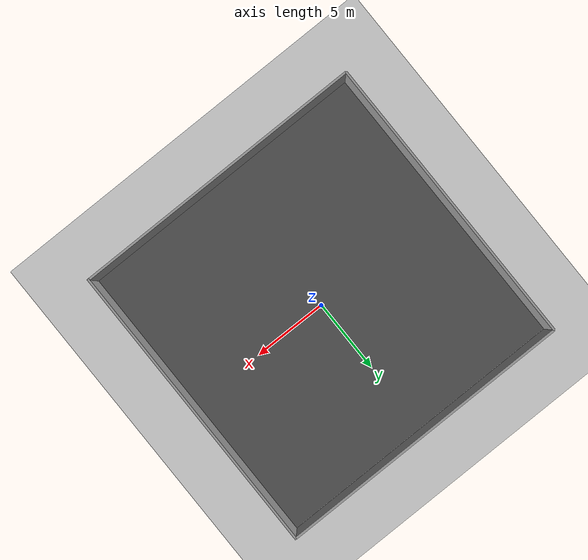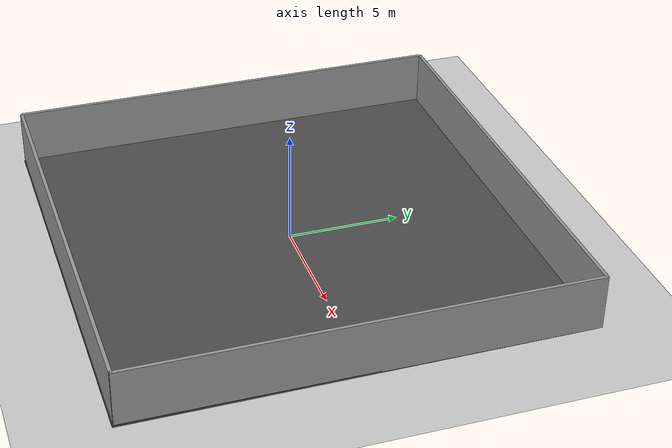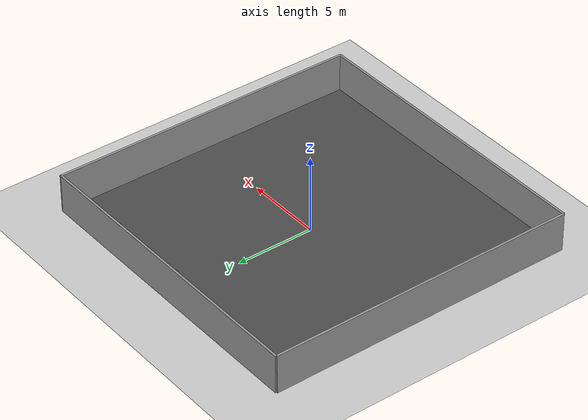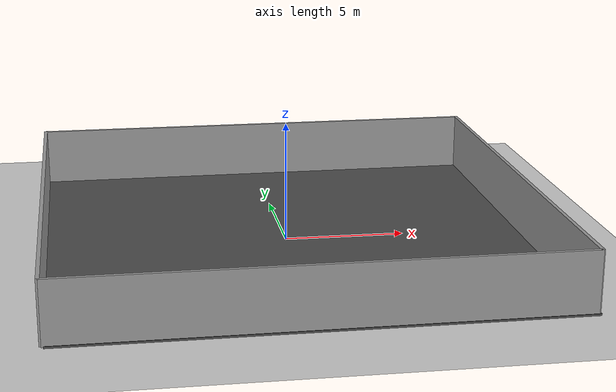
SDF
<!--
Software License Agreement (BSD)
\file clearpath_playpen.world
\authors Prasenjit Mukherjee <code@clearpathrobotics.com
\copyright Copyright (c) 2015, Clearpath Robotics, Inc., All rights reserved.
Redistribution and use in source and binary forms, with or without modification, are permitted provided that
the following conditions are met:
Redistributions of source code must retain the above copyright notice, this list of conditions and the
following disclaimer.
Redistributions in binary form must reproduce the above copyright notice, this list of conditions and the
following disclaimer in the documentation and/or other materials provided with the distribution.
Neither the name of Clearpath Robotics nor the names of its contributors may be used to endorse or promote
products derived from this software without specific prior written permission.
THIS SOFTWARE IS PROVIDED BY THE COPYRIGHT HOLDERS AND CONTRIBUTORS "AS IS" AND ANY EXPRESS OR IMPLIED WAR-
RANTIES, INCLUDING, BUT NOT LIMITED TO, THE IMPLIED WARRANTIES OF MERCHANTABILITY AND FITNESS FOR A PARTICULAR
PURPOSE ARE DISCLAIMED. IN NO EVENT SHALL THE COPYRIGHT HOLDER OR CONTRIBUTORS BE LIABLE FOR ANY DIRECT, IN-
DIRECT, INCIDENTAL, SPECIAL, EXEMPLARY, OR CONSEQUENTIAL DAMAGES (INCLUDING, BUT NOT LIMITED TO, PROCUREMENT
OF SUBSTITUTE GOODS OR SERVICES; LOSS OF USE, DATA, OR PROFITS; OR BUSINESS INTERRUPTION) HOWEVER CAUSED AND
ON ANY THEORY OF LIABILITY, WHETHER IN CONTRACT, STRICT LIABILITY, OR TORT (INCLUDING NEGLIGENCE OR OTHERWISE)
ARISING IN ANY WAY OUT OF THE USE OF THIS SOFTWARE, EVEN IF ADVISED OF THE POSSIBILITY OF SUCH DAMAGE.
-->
<sdf version="1.4">
 <world name="default">
  <light name="sun" type="directional">
   <pose>0 0 10 0 -0 0</pose>
   <diffuse>0.8 0.8 0.8 1</diffuse>
   <specular>0.2 0.2 0.2 1</specular>
   <attenuation>
    <range>1000</range>
    <constant>0.9</constant>
    <linear>0.01</linear>
    <quadratic>0.001</quadratic>
   </attenuation>
   <direction>-0.5 0.1 -0.9</direction>
  </light>
  <model name="ground_plane">
   <static>1</static>
   <link name="link">
    <collision name="collision">
     <geometry><plane><normal>0 0 1</normal><size>100 100</size></plane></geometry>
     <surface><friction><ode><mu>100</mu><mu2>50</mu2></ode></friction></surface>
    </collision>
    <visual name="visual">
     <cast_shadows>0</cast_shadows>
     <geometry><plane><normal>0 0 1</normal><size>100 100</size></plane></geometry>
     <material>
      <script><uri>file://media/materials/scripts/gazebo.material</uri><name>Gazebo/Grey</name></script>
     </material>
    </visual>
    <velocity_decay><linear>0</linear><angular>0</angular></velocity_decay>
   </link>
  </model>
  <physics type="ode">
   <max_step_size>0.01</max_step_size>
   <real_time_factor>1</real_time_factor>
   <real_time_update_rate>100</real_time_update_rate>
   <gravity>0 0 -9.8</gravity>
  </physics>
  <scene><ambient>0.4 0.4 0.4 1</ambient><background>0.7 0.7 0.7 1</background><shadows>1</shadows></scene>
  <model name="asphalt_plane">
   <static>1</static>
   <link name="link">
    <collision name="collision"><geometry><box><size>20 20 0.1</size></box></geometry></collision>
    <visual name="visual">
     <cast_shadows>0</cast_shadows>
     <geometry><box><size>20 20 0.1</size></box></geometry>
     <material>
      <script>
       <uri>model://asphalt_plane/materials/scripts</uri>
       <uri>model://asphalt_plane/materials/textures</uri>
       <name>vrc/asphalt</name>
      </script>
     </material>
    </visual>
    <velocity_decay><linear>0</linear><angular>0</angular></velocity_decay>
   </link>
   <pose>0.076733 -0.110379 0 0 -0 0</pose>
  </model>
  <model name="wall">
   <link name="Wall_0">
    <collision name="Wall_0_Collision">
     <geometry><box><size>20 0.15 2.5</size></box></geometry>
     <pose>0 0 1.25 0 -0 0</pose>
    </collision>
    <visual name="Wall_0_Visual">
     <pose>0 0 1.25 0 -0 0</pose>
     <geometry><box><size>20 0.15 2.5</size></box></geometry>
     <material>
      <script><uri>file://media/materials/scripts/gazebo.material</uri><name>Gazebo/Grey</name></script>
      <ambient>1 1 1 1</ambient>
     </material>
    </visual>
    <pose>-10 0 0 0 -0 1.5708</pose>
   </link>
   <link name="Wall_2">
    <collision name="Wall_2_Collision">
     <geometry><box><size>20 0.15 2.5</size></box></geometry>
     <pose>0 0 1.25 0 -0 0</pose>
    </collision>
    <visual name="Wall_2_Visual">
     <pose>0 0 1.25 0 -0 0</pose>
     <geometry><box><size>20 0.15 2.5</size></box></geometry>
     <material>
      <script><uri>file://media/materials/scripts/gazebo.material</uri><name>Gazebo/Grey</name></script>
      <ambient>1 1 1 1</ambient>
     </material>
    </visual>
    <pose>0 10 0 0 -0 0</pose>
   </link>
   <link name="Wall_3">
    <collision name="Wall_3_Collision">
     <geometry><box><size>20.1121 0.15 2.5</size></box></geometry>
     <pose>0 0 1.25 0 -0 0</pose>
    </collision>
    <visual name="Wall_3_Visual">
     <pose>0 0 1.25 0 -0 0</pose>
     <geometry><box><size>20.1121 0.15 2.5</size></box></geometry>
     <material>
      <script><uri>file://media/materials/scripts/gazebo.material</uri><name>Gazebo/Grey</name></script>
      <ambient>1 1 1 1</ambient>
     </material>
    </visual>
    <pose>10 0 0 0 0 -1.57382</pose>
   </link>
   <link name="Wall_4">
    <collision name="Wall_4_Collision">
     <geometry><box><size>20 0.15 2.5</size></box></geometry>
     <pose>0 0 1.25 0 -0 0</pose>
    </collision>
    <visual name="Wall_4_Visual">
     <pose>0 0 1.25 0 -0 0</pose>
     <geometry><box><size>20 0.15 2.5</size></box></geometry>
     <material>
      <script><uri>file://media/materials/scripts/gazebo.material</uri><name>Gazebo/Grey</name></script>
      <ambient>1 1 1 1</ambient>
     </material>
    </visual>
    <pose>0 -10 0 0 -0 3.14159</pose>
   </link>
   <static>1</static>
  </model>
 </world>
</sdf>
